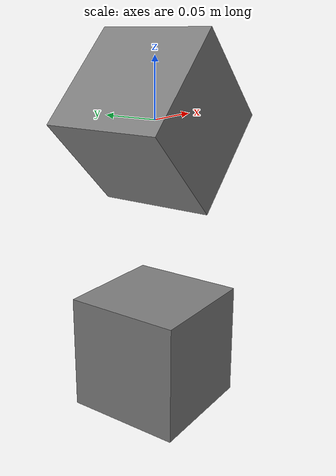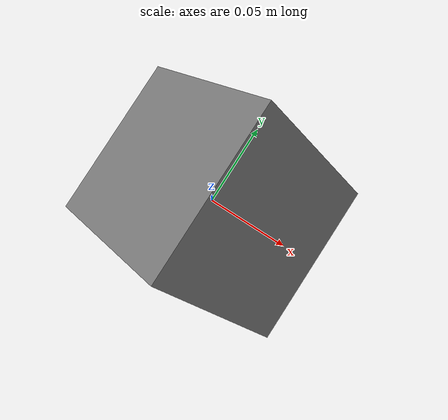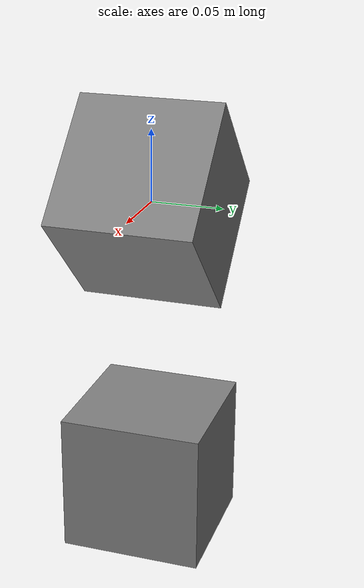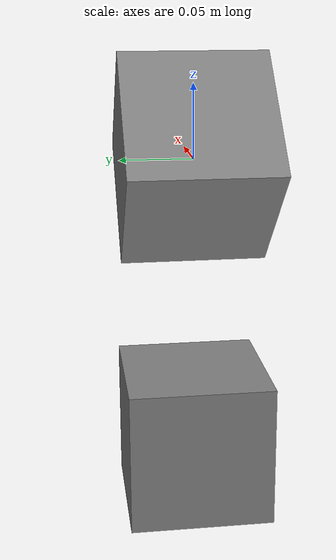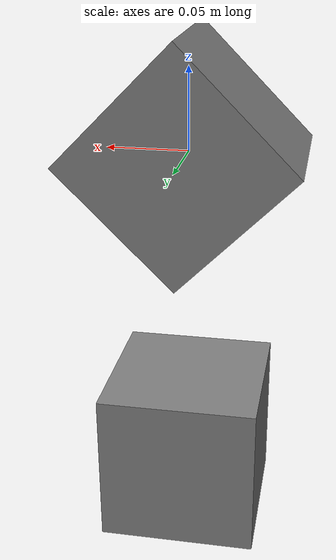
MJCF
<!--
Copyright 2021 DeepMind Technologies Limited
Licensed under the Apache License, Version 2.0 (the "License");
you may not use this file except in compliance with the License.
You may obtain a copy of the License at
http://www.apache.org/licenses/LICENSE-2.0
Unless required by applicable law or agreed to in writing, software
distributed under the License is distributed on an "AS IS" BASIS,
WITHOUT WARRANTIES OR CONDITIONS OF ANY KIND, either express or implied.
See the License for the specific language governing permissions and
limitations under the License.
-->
<mujoco>
  <!--
  body2 is held by body1 through the weld constraint, so the force sensor on body1
  should register 20 (for the weight of both bodies), rotated into the y-z plane.
  -->
  <option gravity="0 0 -1"/>

  <default>
    <!-- A cube of size 0.1^3 with density of 1000 has mass of 1. -->
    <geom size="0.05 0.05 0.05" type="box"/>
  </default>

  <worldbody>
    <body name="body1" euler="0 45 0">
      <geom/>
      <site name="sensor" euler="0 0 90"/>
    </body>
    <body name="body2" pos="0 0 -0.2">
      <joint type="slide" axis="0 0 1"/>
      <geom/>
    </body>
  </worldbody>

  <equality>
    <weld body1="body1" body2="body2" anchor="0 0 0" torquescale="0"/>
  </equality>

  <sensor>
    <force site="sensor" user="0 1.41421356237 1.41421356237"/>
  </sensor>
</mujoco>
